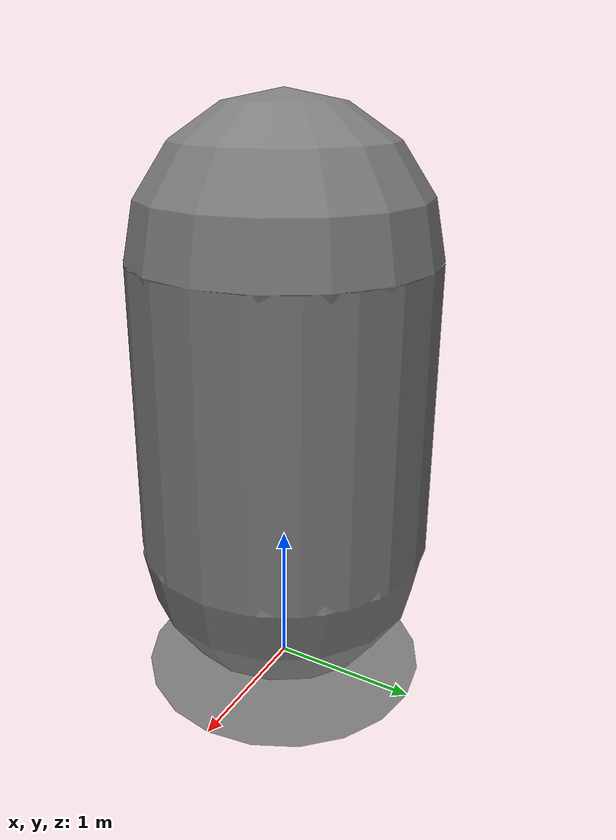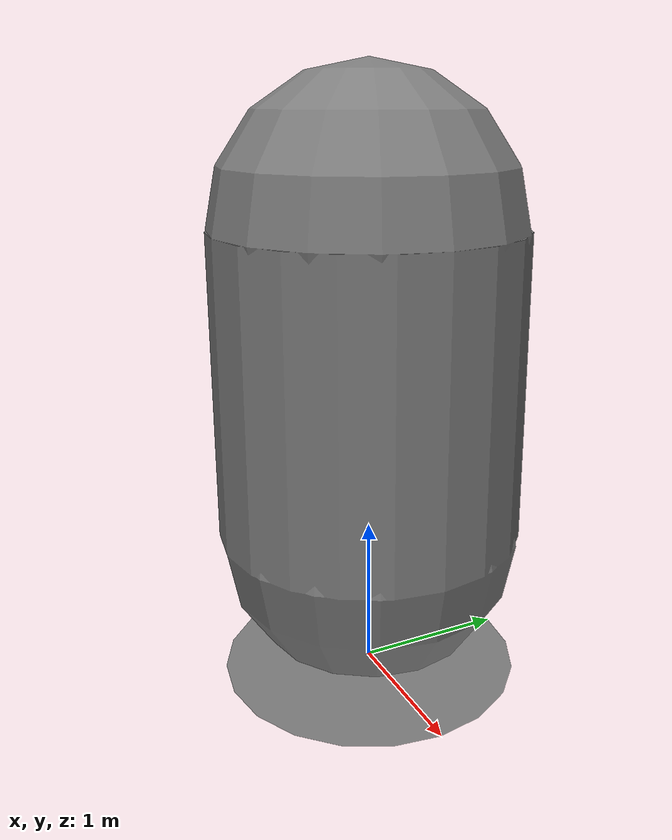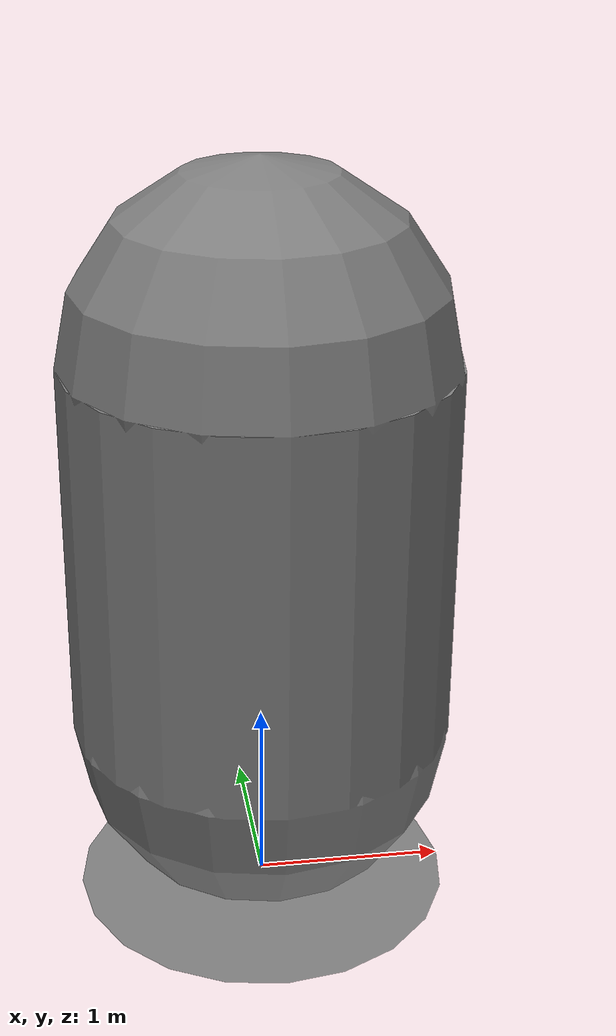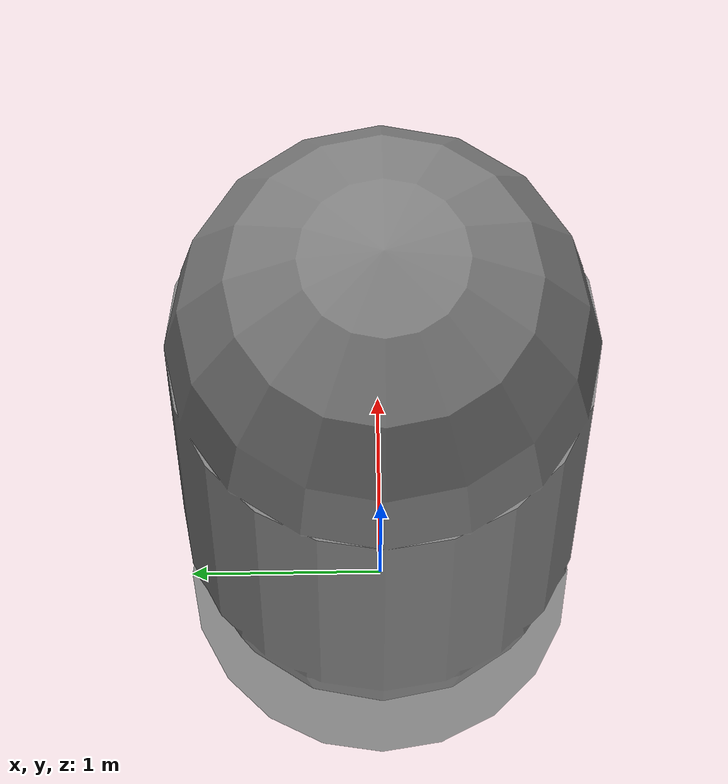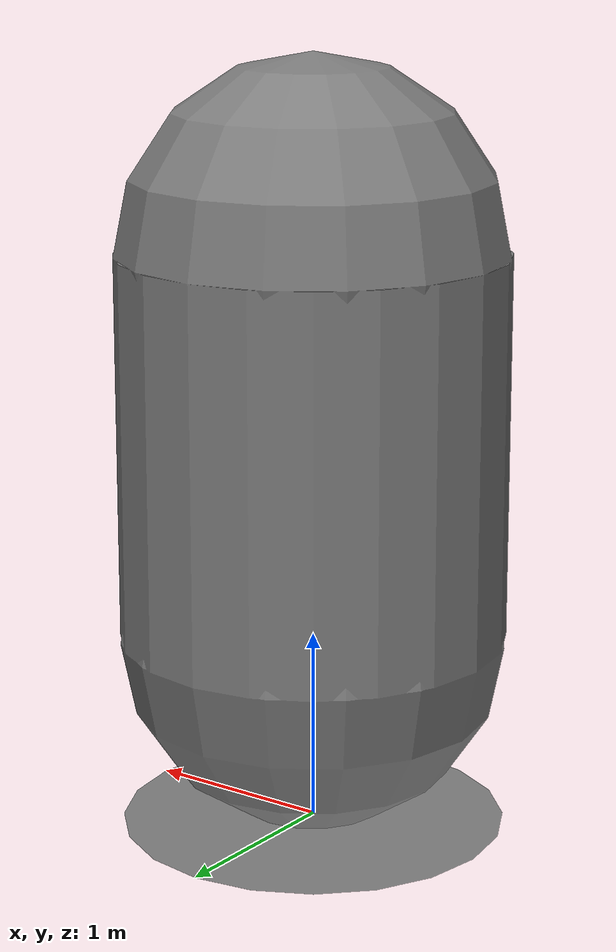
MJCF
<mujoco model="mycapsule">
   <worldbody>
      <light name="top" pos="0 0 2" mode="trackcom"/>
      <body pos="0 0 0">
         <joint type="hinge" axis="0 0 1"/>
         <geom type="ellipsoid" size="1 1 0" />
         <body name="main">
            <geom type="capsule" size="1 1 1"  pos="0 0 2"/>
         </body>
      </body>
   </worldbody>
</mujoco>
